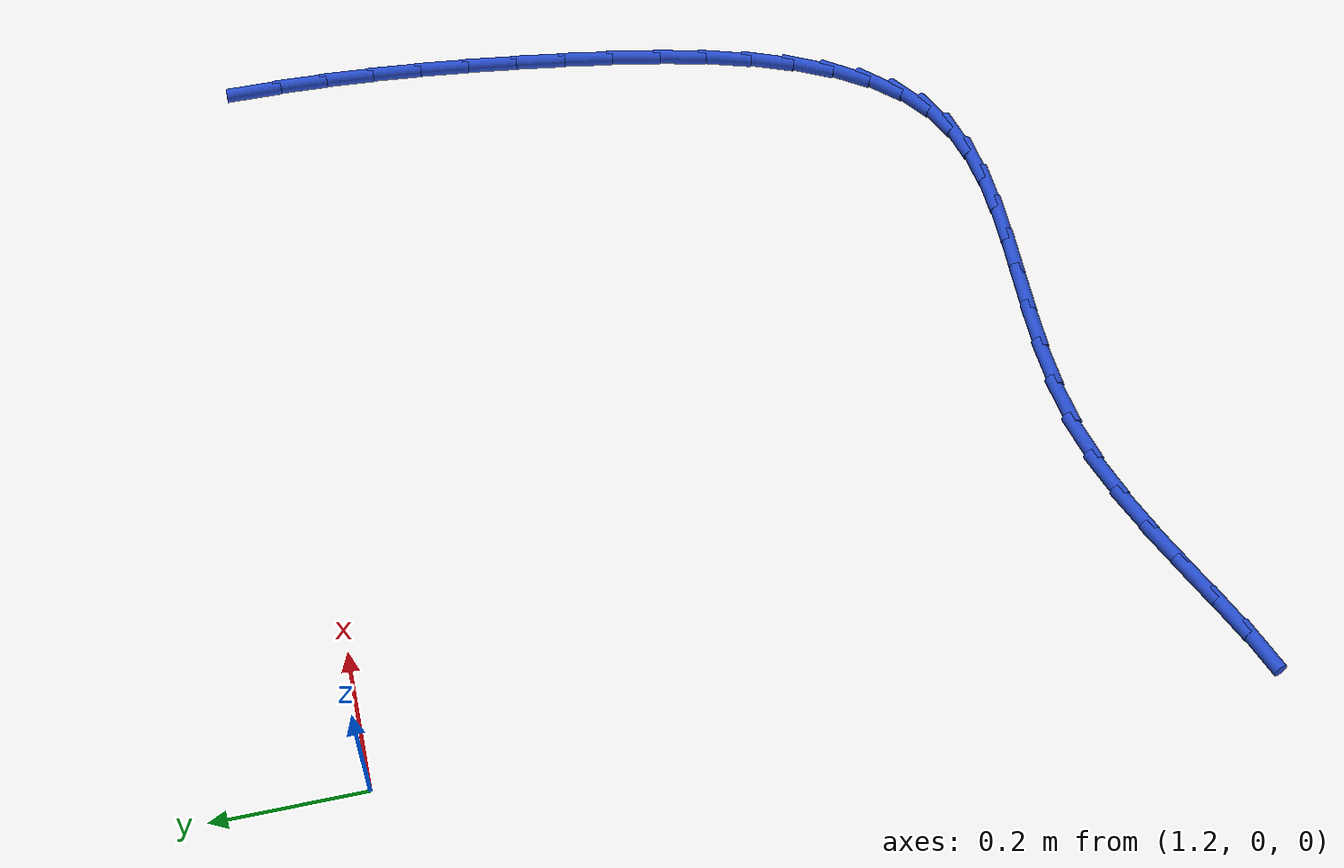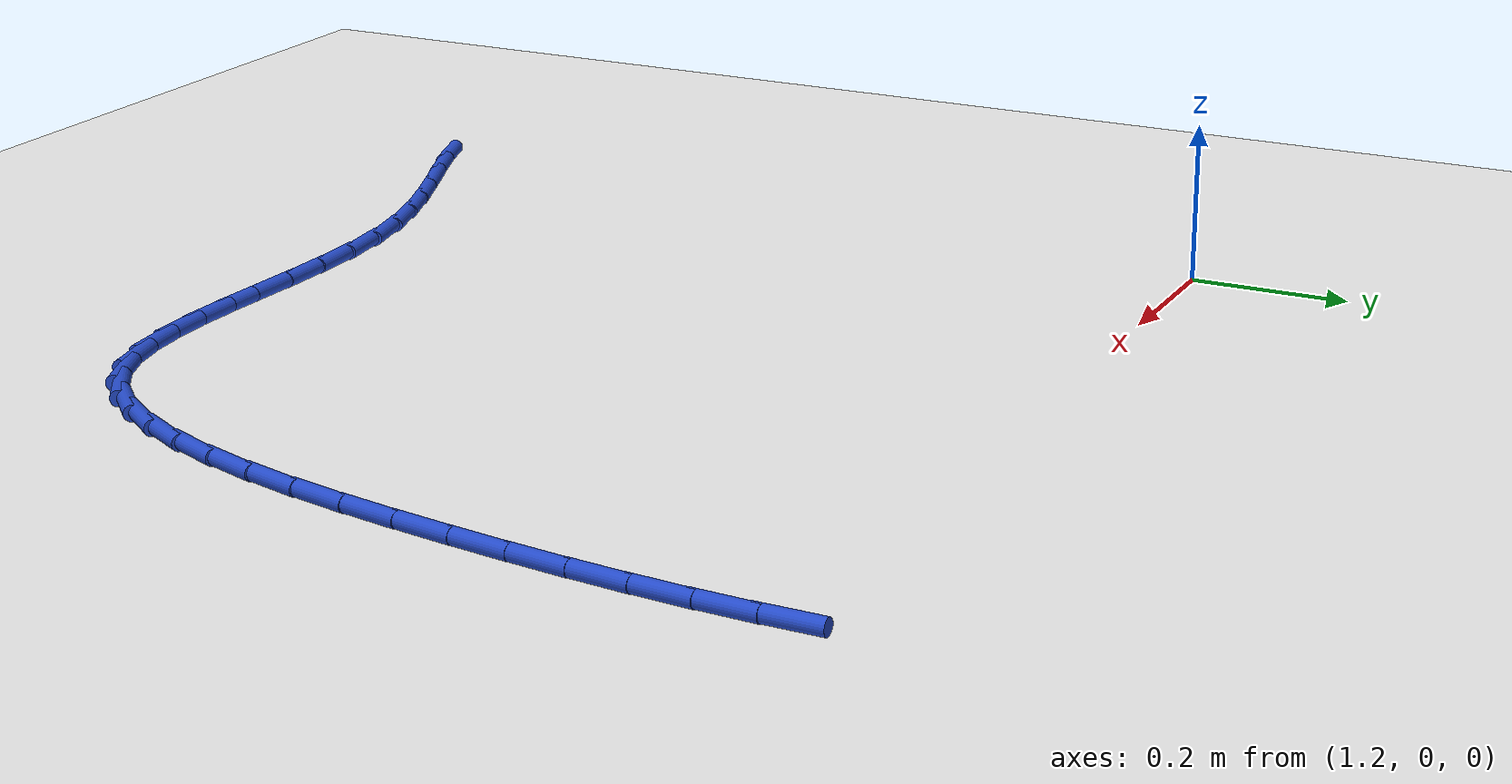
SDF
<sdf version="1.6">
 <world name="default">
  <model name="ground_plane">
   <static>1</static>
   <link name="link">
    <collision name="collision">
     <geometry><plane><normal>0 0 1</normal><size>100 100</size></plane></geometry>
     <surface><friction><ode><mu>100</mu><mu2>50</mu2></ode></friction></surface>
    </collision>
    <visual name="visual">
     <cast_shadows>0</cast_shadows>
     <geometry><plane><normal>0 0 1</normal><size>100 100</size></plane></geometry>
     <material>
      <script><uri>file://media/materials/scripts/gazebo.material</uri><name>Gazebo/WhiteGlow</name></script>
     </material>
    </visual>
   </link>
  </model>
  <model name="line">
   <link name="link_68">
    <pose>2.3656274831615773 0.003811110571549828 0.01 0 1.57 1.565480030272299</pose>
    <collision name="collision">
     <geometry><cylinder><radius>0.01</radius><length>0.08</length></cylinder></geometry>
    </collision>
    <visual name="visual">
     <material>
      <script><name>Gazebo/Blue</name><uri>file://media/materials/scripts/gazebo.material</uri></script>
     </material>
     <geometry><cylinder><radius>0.01</radius><length>0.08</length></cylinder></geometry>
    </visual>
   </link>
   <link name="link_69">
    <pose>2.3652648072065405 -0.06440790932652338 0.01 0 1.57 1.5306052383537834</pose>
    <collision name="collision">
     <geometry><cylinder><radius>0.01</radius><length>0.08</length></cylinder></geometry>
    </collision>
    <visual name="visual">
     <material>
      <script><name>Gazebo/Blue</name><uri>file://media/materials/scripts/gazebo.material</uri></script>
     </material>
     <geometry><cylinder><radius>0.01</radius><length>0.08</length></cylinder></geometry>
    </visual>
   </link>
   <link name="link_70">
    <pose>2.3624741687347064 -0.13380477871874458 0.01 0 1.57 1.5004663269584695</pose>
    <collision name="collision">
     <geometry><cylinder><radius>0.01</radius><length>0.08</length></cylinder></geometry>
    </collision>
    <visual name="visual">
     <material>
      <script><name>Gazebo/Blue</name><uri>file://media/materials/scripts/gazebo.material</uri></script>
     </material>
     <geometry><cylinder><radius>0.01</radius><length>0.08</length></cylinder></geometry>
    </visual>
   </link>
   <link name="link_71">
    <pose>2.3575218376679548 -0.20410426871474036 0.01 0 1.57 1.4745479760536095</pose>
    <collision name="collision">
     <geometry><cylinder><radius>0.01</radius><length>0.08</length></cylinder></geometry>
    </collision>
    <visual name="visual">
     <material>
      <script><name>Gazebo/Blue</name><uri>file://media/materials/scripts/gazebo.material</uri></script>
     </material>
     <geometry><cylinder><radius>0.01</radius><length>0.08</length></cylinder></geometry>
    </visual>
   </link>
   <link name="link_72">
    <pose>2.350674083928168 -0.2750311504241402 0.01 0 1.57 1.4524266369003753</pose>
    <collision name="collision">
     <geometry><cylinder><radius>0.01</radius><length>0.08</length></cylinder></geometry>
    </collision>
    <visual name="visual">
     <material>
      <script><name>Gazebo/Blue</name><uri>file://media/materials/scripts/gazebo.material</uri></script>
     </material>
     <geometry><cylinder><radius>0.01</radius><length>0.08</length></cylinder></geometry>
    </visual>
   </link>
   <link name="link_73">
    <pose>2.342197177437225 -0.34631019495657256 0.01 0 1.57 1.4337633597470836</pose>
    <collision name="collision">
     <geometry><cylinder><radius>0.01</radius><length>0.08</length></cylinder></geometry>
    </collision>
    <visual name="visual">
     <material>
      <script><name>Gazebo/Blue</name><uri>file://media/materials/scripts/gazebo.material</uri></script>
     </material>
     <geometry><cylinder><radius>0.01</radius><length>0.08</length></cylinder></geometry>
    </visual>
   </link>
   <link name="link_74">
    <pose>2.3323573881170105 -0.4176661734216664 0.01 0 1.57 1.4168679055722713</pose>
    <collision name="collision">
     <geometry><cylinder><radius>0.01</radius><length>0.08</length></cylinder></geometry>
    </collision>
    <visual name="visual">
     <material>
      <script><name>Gazebo/Blue</name><uri>file://media/materials/scripts/gazebo.material</uri></script>
     </material>
     <geometry><cylinder><radius>0.01</radius><length>0.08</length></cylinder></geometry>
    </visual>
   </link>
   <link name="link_75">
    <pose>2.321329452165626 -0.4887427133214587 0.01 0 1.57 1.3938486442876357</pose>
    <collision name="collision">
     <geometry><cylinder><radius>0.01</radius><length>0.08</length></cylinder></geometry>
    </collision>
    <visual name="visual">
     <material>
      <script><name>Gazebo/Blue</name><uri>file://media/materials/scripts/gazebo.material</uri></script>
     </material>
     <geometry><cylinder><radius>0.01</radius><length>0.08</length></cylinder></geometry>
    </visual>
   </link>
   <link name="link_76">
    <pose>2.3088092918783074 -0.5587589790656751 0.01 0 1.57 1.3612045401165471</pose>
    <collision name="collision">
     <geometry><cylinder><radius>0.01</radius><length>0.08</length></cylinder></geometry>
    </collision>
    <visual name="visual">
     <material>
      <script><name>Gazebo/Blue</name><uri>file://media/materials/scripts/gazebo.material</uri></script>
     </material>
     <geometry><cylinder><radius>0.01</radius><length>0.08</length></cylinder></geometry>
    </visual>
   </link>
   <link name="link_77">
    <pose>2.294336788871391 -0.6267958067726268 0.01 0 1.57 1.317159905236888</pose>
    <collision name="collision">
     <geometry><cylinder><radius>0.01</radius><length>0.08</length></cylinder></geometry>
    </collision>
    <visual name="visual">
     <material>
      <script><name>Gazebo/Blue</name><uri>file://media/materials/scripts/gazebo.material</uri></script>
     </material>
     <geometry><cylinder><radius>0.01</radius><length>0.08</length></cylinder></geometry>
    </visual>
   </link>
   <link name="link_78">
    <pose>2.277451739318419 -0.6919339568165589 0.01 0 1.57 1.2590927937807597</pose>
    <collision name="collision">
     <geometry><cylinder><radius>0.01</radius><length>0.08</length></cylinder></geometry>
    </collision>
    <visual name="visual">
     <material>
      <script><name>Gazebo/Blue</name><uri>file://media/materials/scripts/gazebo.material</uri></script>
     </material>
     <geometry><cylinder><radius>0.01</radius><length>0.08</length></cylinder></geometry>
    </visual>
   </link>
   <link name="link_79">
    <pose>2.2576939393929365 -0.7532541895717135 0.01 0 1.57 1.1833388596419172</pose>
    <collision name="collision">
     <geometry><cylinder><radius>0.01</radius><length>0.08</length></cylinder></geometry>
    </collision>
    <visual name="visual">
     <material>
      <script><name>Gazebo/Blue</name><uri>file://media/materials/scripts/gazebo.material</uri></script>
     </material>
     <geometry><cylinder><radius>0.01</radius><length>0.08</length></cylinder></geometry>
    </visual>
   </link>
   <link name="link_80">
    <pose>2.234603185268486 -0.8098372654123356 0.01 0 1.57 1.0850829721652575</pose>
    <collision name="collision">
     <geometry><cylinder><radius>0.01</radius><length>0.08</length></cylinder></geometry>
    </collision>
    <visual name="visual">
     <material>
      <script><name>Gazebo/Blue</name><uri>file://media/materials/scripts/gazebo.material</uri></script>
     </material>
     <geometry><cylinder><radius>0.01</radius><length>0.08</length></cylinder></geometry>
    </visual>
   </link>
   <link name="link_81">
    <pose>2.2077192731186113 -0.860763944712669 0.01 0 1.57 0.9586864211450585</pose>
    <collision name="collision">
     <geometry><cylinder><radius>0.01</radius><length>0.08</length></cylinder></geometry>
    </collision>
    <visual name="visual">
     <material>
      <script><name>Gazebo/Blue</name><uri>file://media/materials/scripts/gazebo.material</uri></script>
     </material>
     <geometry><cylinder><radius>0.01</radius><length>0.08</length></cylinder></geometry>
    </visual>
   </link>
   <link name="link_82">
    <pose>2.176581999116855 -0.9051149878469577 0.01 0 1.57 0.799224390631072</pose>
    <collision name="collision">
     <geometry><cylinder><radius>0.01</radius><length>0.08</length></cylinder></geometry>
    </collision>
    <visual name="visual">
     <material>
      <script><name>Gazebo/Blue</name><uri>file://media/materials/scripts/gazebo.material</uri></script>
     </material>
     <geometry><cylinder><radius>0.01</radius><length>0.08</length></cylinder></geometry>
    </visual>
   </link>
   <link name="link_83">
    <pose>2.1407311594367604 -0.9419711551894463 0.01 0 1.57 0.6062101165390714</pose>
    <collision name="collision">
     <geometry><cylinder><radius>0.01</radius><length>0.08</length></cylinder></geometry>
    </collision>
    <visual name="visual">
     <material>
      <script><name>Gazebo/Blue</name><uri>file://media/materials/scripts/gazebo.material</uri></script>
     </material>
     <geometry><cylinder><radius>0.01</radius><length>0.08</length></cylinder></geometry>
    </visual>
   </link>
   <link name="link_84">
    <pose>2.0997065515841338 -0.9704132099343589 0.01 0 1.57 0.3983889959240051</pose>
    <collision name="collision">
     <geometry><cylinder><radius>0.01</radius><length>0.08</length></cylinder></geometry>
    </collision>
    <visual name="visual">
     <material>
      <script><name>Gazebo/Blue</name><uri>file://media/materials/scripts/gazebo.material</uri></script>
     </material>
     <geometry><cylinder><radius>0.01</radius><length>0.08</length></cylinder></geometry>
    </visual>
   </link>
   <link name="link_85">
    <pose>2.053256707838325 -0.9899637416282704 0.01 0 1.57 0.226879925247506</pose>
    <collision name="collision">
     <geometry><cylinder><radius>0.01</radius><length>0.08</length></cylinder></geometry>
    </collision>
    <visual name="visual">
     <material>
      <script><name>Gazebo/Blue</name><uri>file://media/materials/scripts/gazebo.material</uri></script>
     </material>
     <geometry><cylinder><radius>0.01</radius><length>0.08</length></cylinder></geometry>
    </visual>
   </link>
   <link name="link_86">
    <pose>2.0019190946581045 -1.001815267184496 0.01 0 1.57 0.1030452535157359</pose>
    <collision name="collision">
     <geometry><cylinder><radius>0.01</radius><length>0.08</length></cylinder></geometry>
    </collision>
    <visual name="visual">
     <material>
      <script><name>Gazebo/Blue</name><uri>file://media/materials/scripts/gazebo.material</uri></script>
     </material>
     <geometry><cylinder><radius>0.01</radius><length>0.08</length></cylinder></geometry>
    </visual>
   </link>
   <link name="link_87">
    <pose>1.9464175379047217 -1.0075547681933352 0.01 0 1.57 0.020601488572162527</pose>
    <collision name="collision">
     <geometry><cylinder><radius>0.01</radius><length>0.08</length></cylinder></geometry>
    </collision>
    <visual name="visual">
     <material>
      <script><name>Gazebo/Blue</name><uri>file://media/materials/scripts/gazebo.material</uri></script>
     </material>
     <geometry><cylinder><radius>0.01</radius><length>0.08</length></cylinder></geometry>
    </visual>
   </link>
   <link name="link_88">
    <pose>1.8874758634394229 -1.0087692262450856 0.01 0 1.57 -0.027946989879182278</pose>
    <collision name="collision">
     <geometry><cylinder><radius>0.01</radius><length>0.08</length></cylinder></geometry>
    </collision>
    <visual name="visual">
     <material>
      <script><name>Gazebo/Blue</name><uri>file://media/materials/scripts/gazebo.material</uri></script>
     </material>
     <geometry><cylinder><radius>0.01</radius><length>0.08</length></cylinder></geometry>
    </visual>
   </link>
   <link name="link_89">
    <pose>1.825817897123456 -1.0070456229300453 0.01 0 1.57 -0.04826824871373627</pose>
    <collision name="collision">
     <geometry><cylinder><radius>0.01</radius><length>0.08</length></cylinder></geometry>
    </collision>
    <visual name="visual">
     <material>
      <script><name>Gazebo/Blue</name><uri>file://media/materials/scripts/gazebo.material</uri></script>
     </material>
     <geometry><cylinder><radius>0.01</radius><length>0.08</length></cylinder></geometry>
    </visual>
   </link>
   <link name="link_90">
    <pose>1.7621674648180676 -1.003970939838513 0.01 0 1.57 -0.04370016181402365</pose>
    <collision name="collision">
     <geometry><cylinder><radius>0.01</radius><length>0.08</length></cylinder></geometry>
    </collision>
    <visual name="visual">
     <material>
      <script><name>Gazebo/Blue</name><uri>file://media/materials/scripts/gazebo.material</uri></script>
     </material>
     <geometry><cylinder><radius>0.01</radius><length>0.08</length></cylinder></geometry>
    </visual>
   </link>
   <link name="link_91">
    <pose>1.6972483923845045 -1.0011321585607873 0.01 0 1.57 -0.015517201717559367</pose>
    <collision name="collision">
     <geometry><cylinder><radius>0.01</radius><length>0.08</length></cylinder></geometry>
    </collision>
    <visual name="visual">
     <material>
      <script><name>Gazebo/Blue</name><uri>file://media/materials/scripts/gazebo.material</uri></script>
     </material>
     <geometry><cylinder><radius>0.01</radius><length>0.08</length></cylinder></geometry>
    </visual>
   </link>
   <link name="link_92">
    <pose>1.6317845056840168 -1.0001162606871663 0.01 0 1.57 0.03665312924290957</pose>
    <collision name="collision">
     <geometry><cylinder><radius>0.01</radius><length>0.08</length></cylinder></geometry>
    </collision>
    <visual name="visual">
     <material>
      <script><name>Gazebo/Blue</name><uri>file://media/materials/scripts/gazebo.material</uri></script>
     </material>
     <geometry><cylinder><radius>0.01</radius><length>0.08</length></cylinder></geometry>
    </visual>
   </link>
   <link name="link_93">
    <pose>1.5664996305778498 -1.0025102278079485 0.01 0 1.57 0.11429588886069263</pose>
    <collision name="collision">
     <geometry><cylinder><radius>0.01</radius><length>0.08</length></cylinder></geometry>
    </collision>
    <visual name="visual">
     <material>
      <script><name>Gazebo/Blue</name><uri>file://media/materials/scripts/gazebo.material</uri></script>
     </material>
     <geometry><cylinder><radius>0.01</radius><length>0.08</length></cylinder></geometry>
    </visual>
   </link>
   <link name="link_94">
    <pose>1.502117592927251 -1.0099010415134329 0.01 0 1.57 0.21350246426138508</pose>
    <collision name="collision">
     <geometry><cylinder><radius>0.01</radius><length>0.08</length></cylinder></geometry>
    </collision>
    <visual name="visual">
     <material>
      <script><name>Gazebo/Blue</name><uri>file://media/materials/scripts/gazebo.material</uri></script>
     </material>
     <geometry><cylinder><radius>0.01</radius><length>0.08</length></cylinder></geometry>
    </visual>
   </link>
   <link name="link_95">
    <pose>1.439273294687135 -1.0235261111447809 0.01 0 1.57 0.29973965509783307</pose>
    <collision name="collision">
     <geometry><cylinder><radius>0.01</radius><length>0.08</length></cylinder></geometry>
    </collision>
    <visual name="visual">
     <material>
      <script><name>Gazebo/Blue</name><uri>file://media/materials/scripts/gazebo.material</uri></script>
     </material>
     <geometry><cylinder><radius>0.01</radius><length>0.08</length></cylinder></geometry>
    </visual>
   </link>
   <link name="link_96">
    <pose>1.3780483376920978 -1.0424477462811503 0.01 0 1.57 0.3594176813767251</pose>
    <collision name="collision">
     <geometry><cylinder><radius>0.01</radius><length>0.08</length></cylinder></geometry>
    </collision>
    <visual name="visual">
     <material>
      <script><name>Gazebo/Blue</name><uri>file://media/materials/scripts/gazebo.material</uri></script>
     </material>
     <geometry><cylinder><radius>0.01</radius><length>0.08</length></cylinder></geometry>
    </visual>
   </link>
   <link name="link_97">
    <pose>1.3183118575928494 -1.0648930223691795 0.01 0 1.57 0.3928857196789245</pose>
    <collision name="collision">
     <geometry><cylinder><radius>0.01</radius><length>0.08</length></cylinder></geometry>
    </collision>
    <visual name="visual">
     <material>
      <script><name>Gazebo/Blue</name><uri>file://media/materials/scripts/gazebo.material</uri></script>
     </material>
     <geometry><cylinder><radius>0.01</radius><length>0.08</length></cylinder></geometry>
    </visual>
   </link>
   <link name="link_98">
    <pose>1.259932551046036 -1.089087289108767 0.01 0 1.57 0.4000671168438197</pose>
    <collision name="collision">
     <geometry><cylinder><radius>0.01</radius><length>0.08</length></cylinder></geometry>
    </collision>
    <visual name="visual">
     <material>
      <script><name>Gazebo/Blue</name><uri>file://media/materials/scripts/gazebo.material</uri></script>
     </material>
     <geometry><cylinder><radius>0.01</radius><length>0.08</length></cylinder></geometry>
    </visual>
   </link>
   <link name="link_99">
    <pose>1.2027791147083031 -1.1132558961998122 0.01 0 1.57 0.3796564482899555</pose>
    <collision name="collision">
     <geometry><cylinder><radius>0.01</radius><length>0.08</length></cylinder></geometry>
    </collision>
    <visual name="visual">
     <material>
      <script><name>Gazebo/Blue</name><uri>file://media/materials/scripts/gazebo.material</uri></script>
     </material>
     <geometry><cylinder><radius>0.01</radius><length>0.08</length></cylinder></geometry>
    </visual>
   </link>
   <link name="link_100">
    <pose>1.1467202452362995 -1.135624193342214 0.01 0 1.57 0.32872786213661703</pose>
    <collision name="collision">
     <geometry><cylinder><radius>0.01</radius><length>0.08</length></cylinder></geometry>
    </collision>
    <visual name="visual">
     <material>
      <script><name>Gazebo/Blue</name><uri>file://media/materials/scripts/gazebo.material</uri></script>
     </material>
     <geometry><cylinder><radius>0.01</radius><length>0.08</length></cylinder></geometry>
    </visual>
   </link>
  </model>
 </world>
</sdf>
